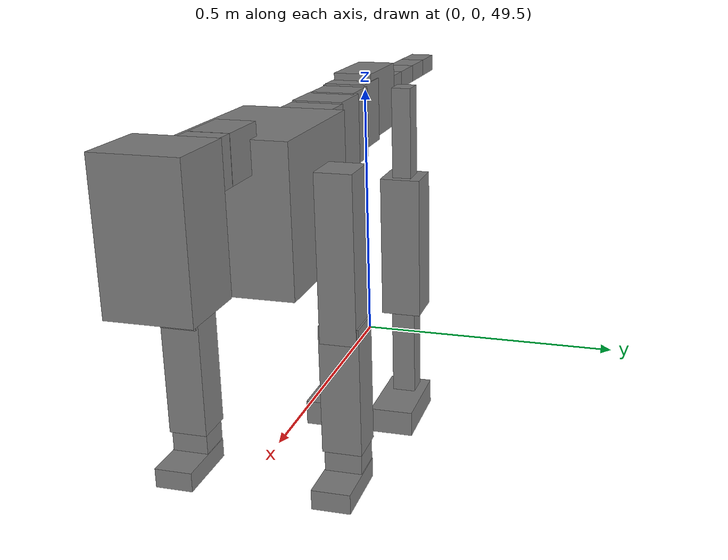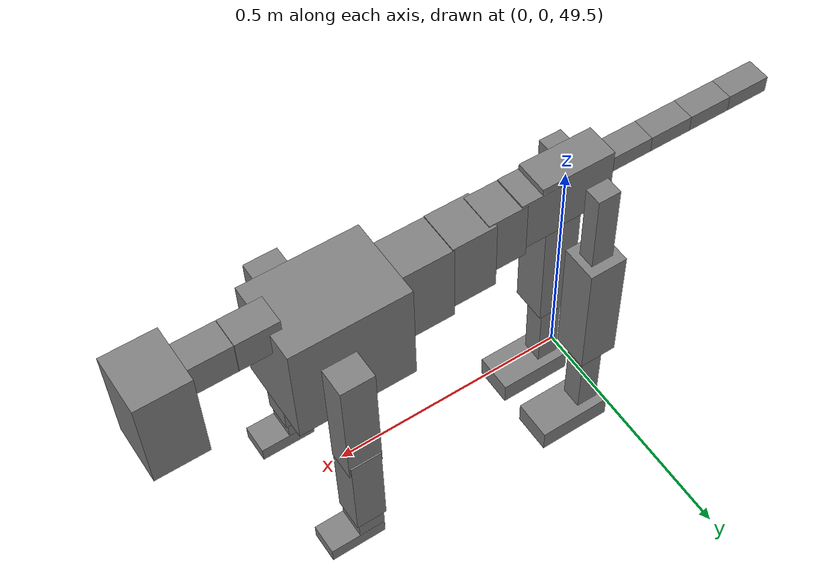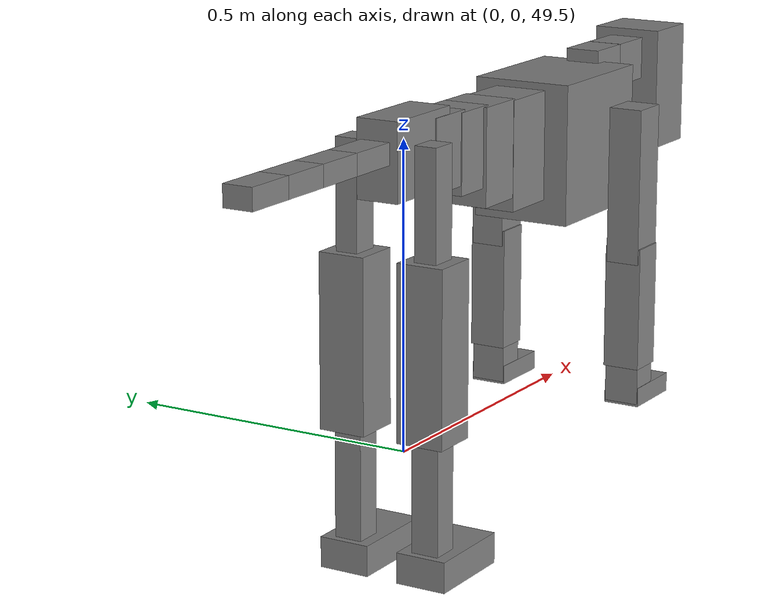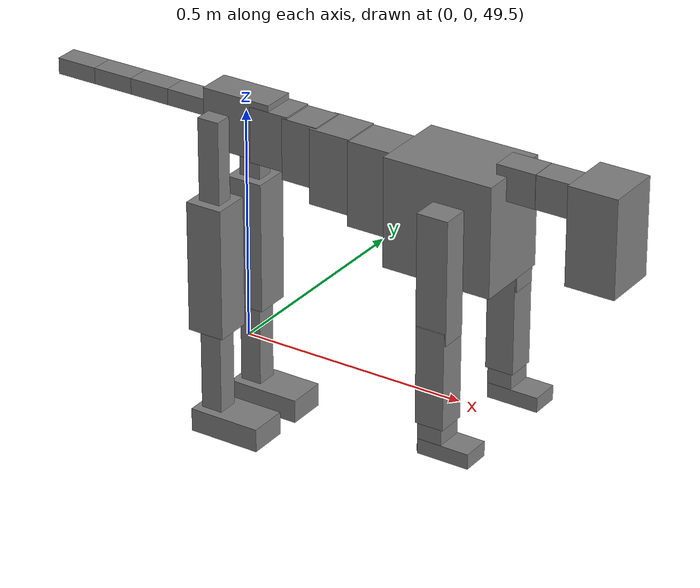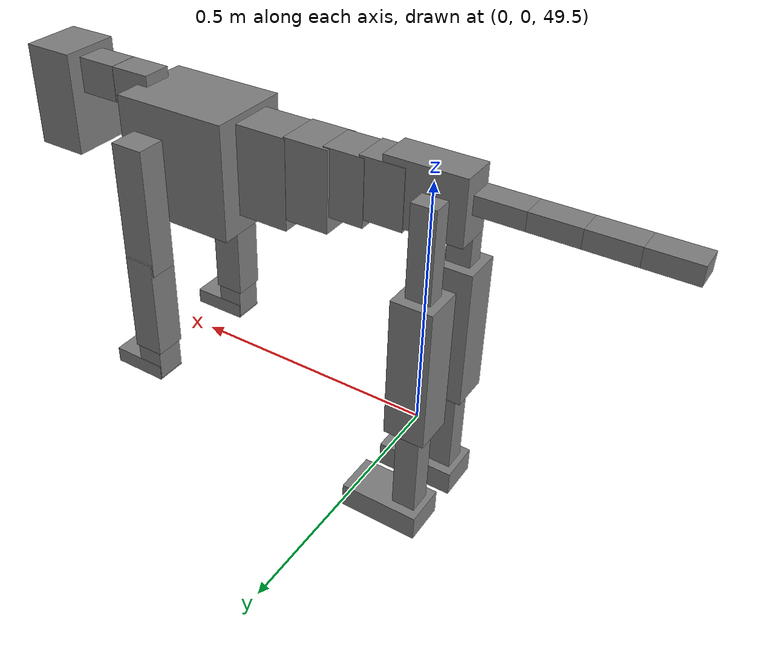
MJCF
<mujoco model="dog">

    <default>
        <joint armature="0.02" stiffness="1" damping="0.2" limited="true"/>
        <geom condim="3" friction="1 0.05 0.05" margin="0.01"/>
        <motor ctrllimited="true" ctrlrange="-1.0 1.0" forcelimited="true" gear="50"/>
    </default>

    <compiler inertiafromgeom="true" angle="radian"/>

    <option timestep="0.016" iterations="50" tolerance="1e-10" solver="Newton" jacobian="dense" cone="pyramidal"/>

    <size nconmax="20000" njmax="60000" nstack="5000000"/>
    <visual>
        <map force="0.1" zfar="30"/>
        <rgba haze="0.15 0.25 0.35 1"/>
        <quality shadowsize="2048"/>
        <global offwidth="800" offheight="800"/>
    </visual>

    <asset>
        <texture type="skybox" builtin="gradient" rgb1="0.3 0.5 0.7" rgb2="0 0 0" width="512" height="512"/>
        <texture name="texplane" type="2d" builtin="checker" rgb1=".2 .3 .4" rgb2=".1 0.15 0.2" width="512" height="512"
                 mark="cross" markrgb=".8 .8 .8"/>
        <texture name="texgeom" type="cube" builtin="flat" mark="cross" width="127" height="1278" rgb1="0.8 0.6 0.4"
                 rgb2="0.8 0.6 0.4" markrgb="1 1 1" random="0.01"/>

        <material name="matplane" reflectance="0.3" texture="texplane" texrepeat="1 1" texuniform="true"/>
        <material name="matgeom" texture="texgeom" texuniform="true" rgba="0.8 0.6 .4 1"/>
    </asset>

    <worldbody>
        <geom name="floor" pos="0 0 0" size="0 0 .25" type="plane" material="matplane" condim="3"/>

        <light directional="false" diffuse=".2 .2 .2" specular="0 0 0" pos="0 0 5" dir="0 0 -1" castshadow="false"/>
        <light mode="targetbodycom" target="torso" directional="false" diffuse=".8 .8 .8" specular="0.3 0.3 0.3"
               pos="0 0 4.0" dir="0 0 -1"/>

        <body name="root" pos="0 0 50">
            <freejoint name="root_1"/>
            <geom type="box" pos="0 0 -0.02" size="0.0774  0.0358  0.063" density="2030"/>

            <body name="spine1" pos="0.054 0 0">
                <joint name="spine1_y" axis="0 1 0" range="0 0.7" limited="true"/>
                <geom type="box" pos="0.02375 0 -0.03" size="0.04375  0.0375  0.05985" density="2030"/>

                <body name="spine2" pos="0.0612 0 0">
                    <joint name="spine2_y" axis="0 1 0" range="-0.15 0.15" limited="true"/>
                    <geom type="box" pos="0.03555  0  -0.04" size="0.04055  0.039  0.06615" density="2030"/>

                    <body name="spine3" pos="0.0730 0 0">
                        <joint name="spine3_y" axis="0 1 0" range="-0.15 0.15" limited="true"/>
                        <geom type="box" pos="0.03555  0  -0.057" size="0.04555  0.0445  0.081" density="2030"/>

                        <body name="spine4" pos="0.0780 0 0">
                            <joint name="spine4_y" axis="0 1 0" range="-0.15 0.15" limited="true"/>
                            <geom type="box" pos="0.05265  0  -0.07" size="0.05265  0.045  0.09135" density="2030"/>

                            <body name="torso" pos="0.1082 0 0">
                                <joint name="torso_y" axis="0 1 0" range="-0.15 0.15" limited="true"/>
                                <geom type="box" pos="0.11925  0  -0.085" size="0.11925  0.085  0.11745"
                                      density="2030"/>

                                <body name="neck1" pos="0.2160  0   0.0180">
                                    <joint name="neck1_y" axis="0 1 0" range="-1.2  -1" limited="true"/>
                                    <geom type="box" pos="0.0423  0  0" size="0.0423  0.03  0.036" density="2325"/>

                                    <body name="neck2" pos="0.0853  0  0">
                                        <joint name="neck2_y" axis="0 1 0" range="0.1  0" limited="true"/>
                                        <geom type="box" pos="0.0423  0  0" size="0.0423  0.03  0.036" density="2325"/>

                                        <body name="head" pos="0.0853  0  0">
                                            <joint name="head_y" axis="0 1 0" range="-0.3  -0.2" limited="true"/>
                                            <geom type="box" pos="0.0531  0  -0.055" size="0.0531  0.06  0.1044"
                                                  density="4030"/>

                                        </body>
                                    </body>
                                </body>

                                <body name="front_shoulder" pos="0.156  0   -0.0480">
                                    <joint name="front_shoulder_y" axis="0 1 0" range="-1 1.5" limited="true"/>
                                    <geom type="box" pos="0 0.13 -0.1053" size="0.0338  0.0289  0.1320" density="1158"/>
                                    <geom type="box" pos="0 -0.13 -0.1053" size="0.0338  0.0289  0.1320"
                                          density="1158"/>

                                    <body name="front_elbow" pos="0  0  -0.2107">
                                        <joint name="front_elbow_y" axis="0 1 0" range="-2 0" limited="true"/>
                                        <geom type="box" pos="0 0.13 -0.1050" size="0.0311  0.0318  0.1050"
                                              density="1081"/>
                                        <geom type="box" pos="0 -0.13 -0.1050" size="0.0311  0.0318  0.1050"
                                              density="1081"/>

                                        <body name="front_wrist" pos="0  0  -0.2101">
                                            <joint name="front_wrist_y" axis="0 1 0" range="-0.2 0" limited="true"/>
                                            <geom type="box" pos="0 0.13 -0.0247" size="0.0269  0.0299  0.0378"
                                                  density="1664"/>
                                            <geom type="box" pos="0 -0.13 -0.0247" size="0.0269  0.0299  0.0378"
                                                  density="1664"/>

                                            <body name="front_finger_end" pos="0  0  -0.0493">
                                                <joint name="front_finger_y" axis="0 1 0" range="-0.4 1"
                                                       limited="true"/>
                                                <geom type="box" pos="0.0311  0.13  -0.0012"
                                                      size="0.0569  0.0311  0.0162" density="1515"/>
                                                <geom type="box" pos="0.0311  -0.13  -0.0012"
                                                      size="0.0569  0.0311  0.0162" density="1515"/>

                                            </body>

                                        </body>
                                    </body>
                                </body>

                            </body>
                        </body>
                    </body>
                </body>
            </body>

            <body name="back_hip" pos="-0.03 0 -0.018">
                <joint name="back_hip_y" axis="0 1 0" range="-1.5 0.3" limited="true"/>
                <geom type="box" pos="0 0.07 -0.0864" size="0.0240  0.0188  0.1092" density="1154"/>
                <geom type="box" pos="0 -0.07 -0.0864" size="0.0240  0.0188  0.1092" density="1154"/>

                <body name="back_knee" pos="0  0  -0.1728">
                    <joint name="back_knee_y" axis="0 1 0" range="0 2.8" limited="true"/>
                    <geom type="box" pos="0 0.07 -0.1275" size="0.0403  0.0397  0.1431" density="1227"/>
                    <geom type="box" pos="0 -0.07 -0.1275" size="0.0403  0.0397  0.1431" density="1227"/>

                    <body name="back_ankle" pos="0  0  -0.2551">
                        <joint name="back_ankle_y" axis="0 1 0" range="-2.2 0" limited="true"/>
                        <geom type="box" pos="0 0.07 -0.1053" size="0.0235  0.0235  0.1166" density="1284"/>
                        <geom type="box" pos="0 -0.07 -0.1053" size="0.0235  0.0235  0.1166" density="1284"/>

                        <body name="back_toe_end" pos="0  0  -0.2106">
                            <joint name="back_toe_y" axis="0 1 0" range="-0.4 1" limited="true"/>
                            <geom type="box" pos="0.0432  0.07  -0.0104" size="0.0792  0.0432  0.0254" density="1515"/>
                            <geom type="box" pos="0.0432  -0.07  -0.0104" size="0.0792  0.0432  0.0254" density="1515"/>

                        </body>
                    </body>
                </body>
            </body>

            <body name="tail1" pos="-0.074 0 -0.006">
                <joint name="tail1_y" axis="0 1 0" range="-0.2 0.2" limited="true"/>
                <geom type="box" pos="-0.0536  0  0" size="0.045  0.025  0.0175" density="1587"/>

                <body name="tail2" pos="-0.09 0 0">
                    <joint name="tail2_y" axis="0 1 0" range="-0.2 0.2" limited="true"/>
                    <geom type="box" pos="-0.0536  0  0" size="0.045  0.025  0.0175" density="1587"/>

                    <body name="tail3" pos="-0.09 0 0">
                        <joint name="tail3_y" axis="0 1 0" range="-0.2 0.2" limited="true"/>
                        <geom type="box" pos="-0.0536  0  0" size="0.045  0.025  0.0175" density="1587"/>

                        <body name="tail4" pos="-0.09 0 0">
                            <joint name="tail4_y" axis="0 1 0" range="-0.2 0.2" limited="true"/>
                            <geom type="box" pos="-0.0536  0  0" size="0.045  0.025  0.0175" density="1587"/>

                        </body>
                    </body>
                </body>
            </body>
        </body>
    </worldbody>

    <actuator>
        <motor joint="spine1_y" forcerange="-150 150     "/>
        <motor joint="spine2_y" forcerange="-150 150     "/>
        <motor joint="spine3_y" forcerange="-150 150     "/>
        <motor joint="spine4_y" forcerange="-150 150     "/>
        <motor joint="torso_y" forcerange="-150 150     "/>
        <motor joint="neck1_y" forcerange="-100 100       "/>
        <motor joint="neck2_y" forcerange="-100 100       "/>
        <motor joint="head_y" forcerange="-150 150       "/>
        <motor joint="front_shoulder_y" forcerange="-151.94 140.70"/>
        <motor joint="front_elbow_y" forcerange="-195.96 135.57"/>
        <motor joint="front_wrist_y" forcerange="-133.20 106.33"/>
        <motor joint="front_finger_y" forcerange="-55.23 70.41"/>
        <motor joint="back_hip_y" forcerange="-216.95 233.71"/>
        <motor joint="back_knee_y" forcerange="-398.69 379.07"/>
        <motor joint="back_angle_y" forcerange="-93.09 183.30"/>
        <motor joint="back_toe_y" forcerange="-139.77 125.86"/>
        <motor joint="tail1_y" forcerange="-50 50     "/>
        <motor joint="tail2_y" forcerange="-50 50     "/>
        <motor joint="tail3_y" forcerange="-50 50     "/>
        <motor joint="tail4_y" forcerange="-50 50     "/>
    </actuator>
</mujoco>
